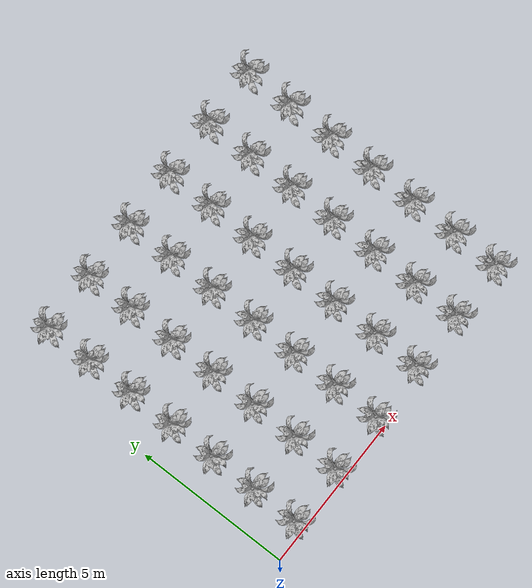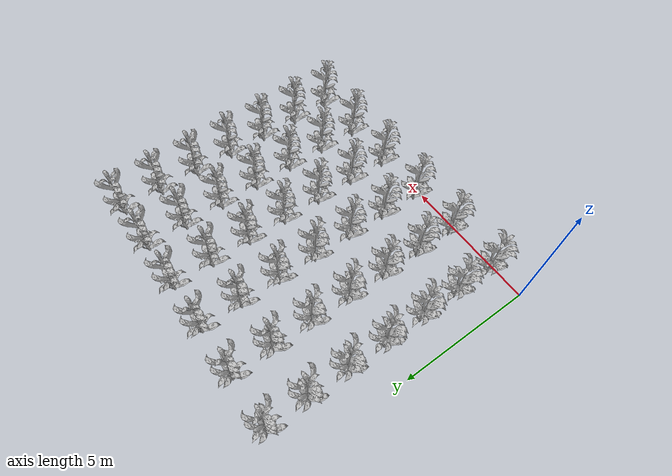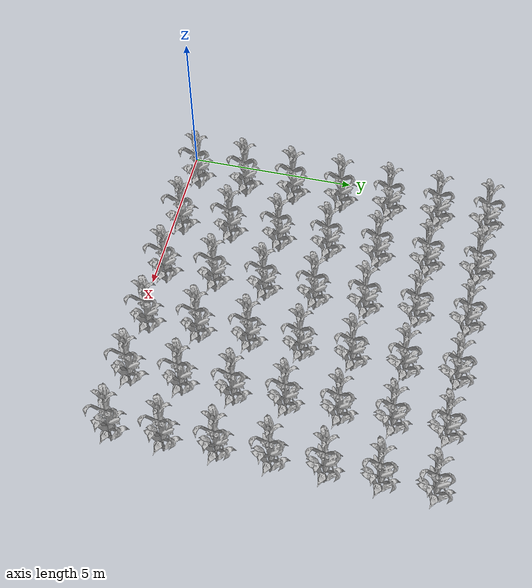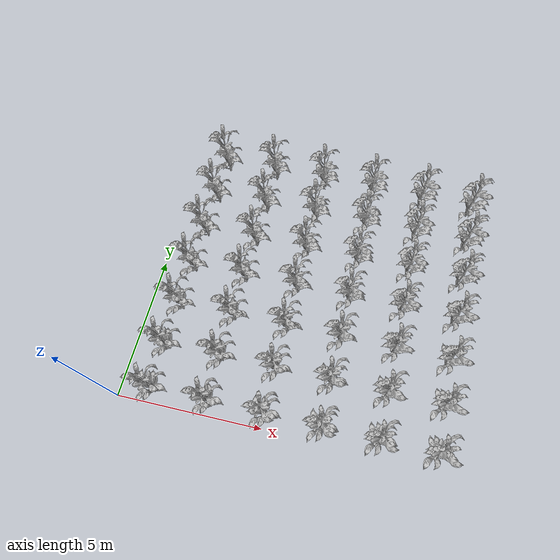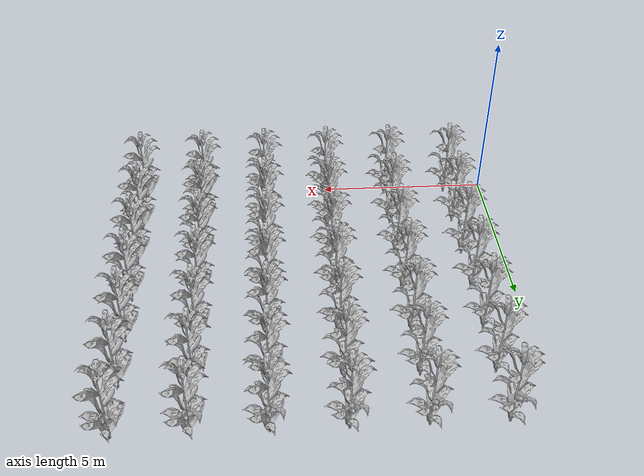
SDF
<sdf version="1.7">
 <world name="default">
  <model name="corn_1.2148646860063206_0.5">
   <static>1</static>
   <link name="link">
    <inertial>
     <mass>0.2</mass>
     <inertia>
      <ixx>0.166667</ixx>
      <ixy>0</ixy>
      <ixz>0</ixz>
      <iyy>0.166667</iyy>
      <iyz>0</iyz>
      <izz>0.166667</izz>
     </inertia>
    </inertial>
    <collision name="collision">
     <geometry><mesh><uri>model://corn_2/meshes/corn.dae</uri><scale>1 1 1</scale></mesh></geometry>
     <surface>
      <friction><ode><mu>0.0</mu><mu2>0.0</mu2></ode></friction>
      <contact><ode><kp>0.0</kp><kd>0.0</kd><max_vel>0.0</max_vel><min_depth>0.002</min_depth></ode></contact>
     </surface>
    </collision>
    <visual name="visual">
     <geometry><mesh><uri>model://corn_2/meshes/corn.dae</uri><scale>1 1 1</scale></mesh></geometry>
    </visual>
    <velocity_decay><linear>0</linear><angular>0</angular></velocity_decay>
   </link>
   <pose>1.21487 0.5 0.15 0 -0 0</pose>
  </model>
  <model name="corn_1.2148646860063206_2.0">
   <static>1</static>
   <link name="link">
    <inertial>
     <mass>0.2</mass>
     <inertia>
      <ixx>0.166667</ixx>
      <ixy>0</ixy>
      <ixz>0</ixz>
      <iyy>0.166667</iyy>
      <iyz>0</iyz>
      <izz>0.166667</izz>
     </inertia>
    </inertial>
    <collision name="collision">
     <geometry><mesh><uri>model://corn_2/meshes/corn.dae</uri><scale>1 1 1</scale></mesh></geometry>
     <surface>
      <friction><ode><mu>0.0</mu><mu2>0.0</mu2></ode></friction>
      <contact><ode><kp>0.0</kp><kd>0.0</kd><max_vel>0.0</max_vel><min_depth>0.002</min_depth></ode></contact>
     </surface>
    </collision>
    <visual name="visual">
     <geometry><mesh><uri>model://corn_2/meshes/corn.dae</uri><scale>1 1 1</scale></mesh></geometry>
    </visual>
    <velocity_decay><linear>0</linear><angular>0</angular></velocity_decay>
   </link>
   <pose>1.21487 2 0.15 0 -0 0</pose>
  </model>
  <model name="corn_1.2148646860063206_3.5">
   <static>1</static>
   <link name="link">
    <inertial>
     <mass>0.2</mass>
     <inertia>
      <ixx>0.166667</ixx>
      <ixy>0</ixy>
      <ixz>0</ixz>
      <iyy>0.166667</iyy>
      <iyz>0</iyz>
      <izz>0.166667</izz>
     </inertia>
    </inertial>
    <collision name="collision">
     <geometry><mesh><uri>model://corn_2/meshes/corn.dae</uri><scale>1 1 1</scale></mesh></geometry>
     <surface>
      <friction><ode><mu>0.0</mu><mu2>0.0</mu2></ode></friction>
      <contact><ode><kp>0.0</kp><kd>0.0</kd><max_vel>0.0</max_vel><min_depth>0.002</min_depth></ode></contact>
     </surface>
    </collision>
    <visual name="visual">
     <geometry><mesh><uri>model://corn_2/meshes/corn.dae</uri><scale>1 1 1</scale></mesh></geometry>
    </visual>
    <velocity_decay><linear>0</linear><angular>0</angular></velocity_decay>
   </link>
   <pose>1.21487 3.5 0.15 0 -0 0</pose>
  </model>
  <model name="corn_1.2148646860063206_5.0">
   <static>1</static>
   <link name="link">
    <inertial>
     <mass>0.2</mass>
     <inertia>
      <ixx>0.166667</ixx>
      <ixy>0</ixy>
      <ixz>0</ixz>
      <iyy>0.166667</iyy>
      <iyz>0</iyz>
      <izz>0.166667</izz>
     </inertia>
    </inertial>
    <collision name="collision">
     <geometry><mesh><uri>model://corn_2/meshes/corn.dae</uri><scale>1 1 1</scale></mesh></geometry>
     <surface>
      <friction><ode><mu>0.0</mu><mu2>0.0</mu2></ode></friction>
      <contact><ode><kp>0.0</kp><kd>0.0</kd><max_vel>0.0</max_vel><min_depth>0.002</min_depth></ode></contact>
     </surface>
    </collision>
    <visual name="visual">
     <geometry><mesh><uri>model://corn_2/meshes/corn.dae</uri><scale>1 1 1</scale></mesh></geometry>
    </visual>
    <velocity_decay><linear>0</linear><angular>0</angular></velocity_decay>
   </link>
   <pose>1.21487 5 0.15 0 -0 0</pose>
  </model>
  <model name="corn_1.2148646860063206_6.5">
   <static>1</static>
   <link name="link">
    <inertial>
     <mass>0.2</mass>
     <inertia>
      <ixx>0.166667</ixx>
      <ixy>0</ixy>
      <ixz>0</ixz>
      <iyy>0.166667</iyy>
      <iyz>0</iyz>
      <izz>0.166667</izz>
     </inertia>
    </inertial>
    <collision name="collision">
     <geometry><mesh><uri>model://corn_2/meshes/corn.dae</uri><scale>1 1 1</scale></mesh></geometry>
     <surface>
      <friction><ode><mu>0.0</mu><mu2>0.0</mu2></ode></friction>
      <contact><ode><kp>0.0</kp><kd>0.0</kd><max_vel>0.0</max_vel><min_depth>0.002</min_depth></ode></contact>
     </surface>
    </collision>
    <visual name="visual">
     <geometry><mesh><uri>model://corn_2/meshes/corn.dae</uri><scale>1 1 1</scale></mesh></geometry>
    </visual>
    <velocity_decay><linear>0</linear><angular>0</angular></velocity_decay>
   </link>
   <pose>1.21487 6.5 0.15 0 -0 0</pose>
  </model>
  <model name="corn_1.2148646860063206_8.0">
   <static>1</static>
   <link name="link">
    <inertial>
     <mass>0.2</mass>
     <inertia>
      <ixx>0.166667</ixx>
      <ixy>0</ixy>
      <ixz>0</ixz>
      <iyy>0.166667</iyy>
      <iyz>0</iyz>
      <izz>0.166667</izz>
     </inertia>
    </inertial>
    <collision name="collision">
     <geometry><mesh><uri>model://corn_2/meshes/corn.dae</uri><scale>1 1 1</scale></mesh></geometry>
     <surface>
      <friction><ode><mu>0.0</mu><mu2>0.0</mu2></ode></friction>
      <contact><ode><kp>0.0</kp><kd>0.0</kd><max_vel>0.0</max_vel><min_depth>0.002</min_depth></ode></contact>
     </surface>
    </collision>
    <visual name="visual">
     <geometry><mesh><uri>model://corn_2/meshes/corn.dae</uri><scale>1 1 1</scale></mesh></geometry>
    </visual>
    <velocity_decay><linear>0</linear><angular>0</angular></velocity_decay>
   </link>
   <pose>1.21487 8 0.15 0 -0 0</pose>
  </model>
  <model name="corn_1.2148646860063206_9.5">
   <static>1</static>
   <link name="link">
    <inertial>
     <mass>0.2</mass>
     <inertia>
      <ixx>0.166667</ixx>
      <ixy>0</ixy>
      <ixz>0</ixz>
      <iyy>0.166667</iyy>
      <iyz>0</iyz>
      <izz>0.166667</izz>
     </inertia>
    </inertial>
    <collision name="collision">
     <geometry><mesh><uri>model://corn_2/meshes/corn.dae</uri><scale>1 1 1</scale></mesh></geometry>
     <surface>
      <friction><ode><mu>0.0</mu><mu2>0.0</mu2></ode></friction>
      <contact><ode><kp>0.0</kp><kd>0.0</kd><max_vel>0.0</max_vel><min_depth>0.002</min_depth></ode></contact>
     </surface>
    </collision>
    <visual name="visual">
     <geometry><mesh><uri>model://corn_2/meshes/corn.dae</uri><scale>1 1 1</scale></mesh></geometry>
    </visual>
    <velocity_decay><linear>0</linear><angular>0</angular></velocity_decay>
   </link>
   <pose>1.21487 9.5 0.15 0 -0 0</pose>
  </model>
  <model name="corn_3.1126727651393438_0.5">
   <static>1</static>
   <link name="link">
    <inertial>
     <mass>0.2</mass>
     <inertia>
      <ixx>0.166667</ixx>
      <ixy>0</ixy>
      <ixz>0</ixz>
      <iyy>0.166667</iyy>
      <iyz>0</iyz>
      <izz>0.166667</izz>
     </inertia>
    </inertial>
    <collision name="collision">
     <geometry><mesh><uri>model://corn_2/meshes/corn.dae</uri><scale>1 1 1</scale></mesh></geometry>
     <surface>
      <friction><ode><mu>0.0</mu><mu2>0.0</mu2></ode></friction>
      <contact><ode><kp>0.0</kp><kd>0.0</kd><max_vel>0.0</max_vel><min_depth>0.002</min_depth></ode></contact>
     </surface>
    </collision>
    <visual name="visual">
     <geometry><mesh><uri>model://corn_2/meshes/corn.dae</uri><scale>1 1 1</scale></mesh></geometry>
    </visual>
    <velocity_decay><linear>0</linear><angular>0</angular></velocity_decay>
   </link>
   <pose>3.11267 0.5 0.15 0 -0 0</pose>
  </model>
  <model name="corn_3.1126727651393438_2.0">
   <static>1</static>
   <link name="link">
    <inertial>
     <mass>0.2</mass>
     <inertia>
      <ixx>0.166667</ixx>
      <ixy>0</ixy>
      <ixz>0</ixz>
      <iyy>0.166667</iyy>
      <iyz>0</iyz>
      <izz>0.166667</izz>
     </inertia>
    </inertial>
    <collision name="collision">
     <geometry><mesh><uri>model://corn_2/meshes/corn.dae</uri><scale>1 1 1</scale></mesh></geometry>
     <surface>
      <friction><ode><mu>0.0</mu><mu2>0.0</mu2></ode></friction>
      <contact><ode><kp>0.0</kp><kd>0.0</kd><max_vel>0.0</max_vel><min_depth>0.002</min_depth></ode></contact>
     </surface>
    </collision>
    <visual name="visual">
     <geometry><mesh><uri>model://corn_2/meshes/corn.dae</uri><scale>1 1 1</scale></mesh></geometry>
    </visual>
    <velocity_decay><linear>0</linear><angular>0</angular></velocity_decay>
   </link>
   <pose>3.11267 2 0.15 0 -0 0</pose>
  </model>
  <model name="corn_3.1126727651393438_3.5">
   <static>1</static>
   <link name="link">
    <inertial>
     <mass>0.2</mass>
     <inertia>
      <ixx>0.166667</ixx>
      <ixy>0</ixy>
      <ixz>0</ixz>
      <iyy>0.166667</iyy>
      <iyz>0</iyz>
      <izz>0.166667</izz>
     </inertia>
    </inertial>
    <collision name="collision">
     <geometry><mesh><uri>model://corn_2/meshes/corn.dae</uri><scale>1 1 1</scale></mesh></geometry>
     <surface>
      <friction><ode><mu>0.0</mu><mu2>0.0</mu2></ode></friction>
      <contact><ode><kp>0.0</kp><kd>0.0</kd><max_vel>0.0</max_vel><min_depth>0.002</min_depth></ode></contact>
     </surface>
    </collision>
    <visual name="visual">
     <geometry><mesh><uri>model://corn_2/meshes/corn.dae</uri><scale>1 1 1</scale></mesh></geometry>
    </visual>
    <velocity_decay><linear>0</linear><angular>0</angular></velocity_decay>
   </link>
   <pose>3.11267 3.5 0.15 0 -0 0</pose>
  </model>
  <model name="corn_3.1126727651393438_5.0">
   <static>1</static>
   <link name="link">
    <inertial>
     <mass>0.2</mass>
     <inertia>
      <ixx>0.166667</ixx>
      <ixy>0</ixy>
      <ixz>0</ixz>
      <iyy>0.166667</iyy>
      <iyz>0</iyz>
      <izz>0.166667</izz>
     </inertia>
    </inertial>
    <collision name="collision">
     <geometry><mesh><uri>model://corn_2/meshes/corn.dae</uri><scale>1 1 1</scale></mesh></geometry>
     <surface>
      <friction><ode><mu>0.0</mu><mu2>0.0</mu2></ode></friction>
      <contact><ode><kp>0.0</kp><kd>0.0</kd><max_vel>0.0</max_vel><min_depth>0.002</min_depth></ode></contact>
     </surface>
    </collision>
    <visual name="visual">
     <geometry><mesh><uri>model://corn_2/meshes/corn.dae</uri><scale>1 1 1</scale></mesh></geometry>
    </visual>
    <velocity_decay><linear>0</linear><angular>0</angular></velocity_decay>
   </link>
   <pose>3.11267 5 0.15 0 -0 0</pose>
  </model>
  <model name="corn_3.1126727651393438_6.5">
   <static>1</static>
   <link name="link">
    <inertial>
     <mass>0.2</mass>
     <inertia>
      <ixx>0.166667</ixx>
      <ixy>0</ixy>
      <ixz>0</ixz>
      <iyy>0.166667</iyy>
      <iyz>0</iyz>
      <izz>0.166667</izz>
     </inertia>
    </inertial>
    <collision name="collision">
     <geometry><mesh><uri>model://corn_2/meshes/corn.dae</uri><scale>1 1 1</scale></mesh></geometry>
     <surface>
      <friction><ode><mu>0.0</mu><mu2>0.0</mu2></ode></friction>
      <contact><ode><kp>0.0</kp><kd>0.0</kd><max_vel>0.0</max_vel><min_depth>0.002</min_depth></ode></contact>
     </surface>
    </collision>
    <visual name="visual">
     <geometry><mesh><uri>model://corn_2/meshes/corn.dae</uri><scale>1 1 1</scale></mesh></geometry>
    </visual>
    <velocity_decay><linear>0</linear><angular>0</angular></velocity_decay>
   </link>
   <pose>3.11267 6.5 0.15 0 -0 0</pose>
  </model>
  <model name="corn_3.1126727651393438_8.0">
   <static>1</static>
   <link name="link">
    <inertial>
     <mass>0.2</mass>
     <inertia>
      <ixx>0.166667</ixx>
      <ixy>0</ixy>
      <ixz>0</ixz>
      <iyy>0.166667</iyy>
      <iyz>0</iyz>
      <izz>0.166667</izz>
     </inertia>
    </inertial>
    <collision name="collision">
     <geometry><mesh><uri>model://corn_2/meshes/corn.dae</uri><scale>1 1 1</scale></mesh></geometry>
     <surface>
      <friction><ode><mu>0.0</mu><mu2>0.0</mu2></ode></friction>
      <contact><ode><kp>0.0</kp><kd>0.0</kd><max_vel>0.0</max_vel><min_depth>0.002</min_depth></ode></contact>
     </surface>
    </collision>
    <visual name="visual">
     <geometry><mesh><uri>model://corn_2/meshes/corn.dae</uri><scale>1 1 1</scale></mesh></geometry>
    </visual>
    <velocity_decay><linear>0</linear><angular>0</angular></velocity_decay>
   </link>
   <pose>3.11267 8 0.15 0 -0 0</pose>
  </model>
  <model name="corn_3.1126727651393438_9.5">
   <static>1</static>
   <link name="link">
    <inertial>
     <mass>0.2</mass>
     <inertia>
      <ixx>0.166667</ixx>
      <ixy>0</ixy>
      <ixz>0</ixz>
      <iyy>0.166667</iyy>
      <iyz>0</iyz>
      <izz>0.166667</izz>
     </inertia>
    </inertial>
    <collision name="collision">
     <geometry><mesh><uri>model://corn_2/meshes/corn.dae</uri><scale>1 1 1</scale></mesh></geometry>
     <surface>
      <friction><ode><mu>0.0</mu><mu2>0.0</mu2></ode></friction>
      <contact><ode><kp>0.0</kp><kd>0.0</kd><max_vel>0.0</max_vel><min_depth>0.002</min_depth></ode></contact>
     </surface>
    </collision>
    <visual name="visual">
     <geometry><mesh><uri>model://corn_2/meshes/corn.dae</uri><scale>1 1 1</scale></mesh></geometry>
    </visual>
    <velocity_decay><linear>0</linear><angular>0</angular></velocity_decay>
   </link>
   <pose>3.11267 9.5 0.15 0 -0 0</pose>
  </model>
  <model name="corn_4.995110941804327_0.5">
   <static>1</static>
   <link name="link">
    <inertial>
     <mass>0.2</mass>
     <inertia>
      <ixx>0.166667</ixx>
      <ixy>0</ixy>
      <ixz>0</ixz>
      <iyy>0.166667</iyy>
      <iyz>0</iyz>
      <izz>0.166667</izz>
     </inertia>
    </inertial>
    <collision name="collision">
     <geometry><mesh><uri>model://corn_2/meshes/corn.dae</uri><scale>1 1 1</scale></mesh></geometry>
     <surface>
      <friction><ode><mu>0.0</mu><mu2>0.0</mu2></ode></friction>
      <contact><ode><kp>0.0</kp><kd>0.0</kd><max_vel>0.0</max_vel><min_depth>0.002</min_depth></ode></contact>
     </surface>
    </collision>
    <visual name="visual">
     <geometry><mesh><uri>model://corn_2/meshes/corn.dae</uri><scale>1 1 1</scale></mesh></geometry>
    </visual>
    <velocity_decay><linear>0</linear><angular>0</angular></velocity_decay>
   </link>
   <pose>4.99511 0.5 0.15 0 -0 0</pose>
  </model>
  <model name="corn_4.995110941804327_2.0">
   <static>1</static>
   <link name="link">
    <inertial>
     <mass>0.2</mass>
     <inertia>
      <ixx>0.166667</ixx>
      <ixy>0</ixy>
      <ixz>0</ixz>
      <iyy>0.166667</iyy>
      <iyz>0</iyz>
      <izz>0.166667</izz>
     </inertia>
    </inertial>
    <collision name="collision">
     <geometry><mesh><uri>model://corn_2/meshes/corn.dae</uri><scale>1 1 1</scale></mesh></geometry>
     <surface>
      <friction><ode><mu>0.0</mu><mu2>0.0</mu2></ode></friction>
      <contact><ode><kp>0.0</kp><kd>0.0</kd><max_vel>0.0</max_vel><min_depth>0.002</min_depth></ode></contact>
     </surface>
    </collision>
    <visual name="visual">
     <geometry><mesh><uri>model://corn_2/meshes/corn.dae</uri><scale>1 1 1</scale></mesh></geometry>
    </visual>
    <velocity_decay><linear>0</linear><angular>0</angular></velocity_decay>
   </link>
   <pose>4.99511 2 0.15 0 -0 0</pose>
  </model>
  <model name="corn_4.995110941804327_3.5">
   <static>1</static>
   <link name="link">
    <inertial>
     <mass>0.2</mass>
     <inertia>
      <ixx>0.166667</ixx>
      <ixy>0</ixy>
      <ixz>0</ixz>
      <iyy>0.166667</iyy>
      <iyz>0</iyz>
      <izz>0.166667</izz>
     </inertia>
    </inertial>
    <collision name="collision">
     <geometry><mesh><uri>model://corn_2/meshes/corn.dae</uri><scale>1 1 1</scale></mesh></geometry>
     <surface>
      <friction><ode><mu>0.0</mu><mu2>0.0</mu2></ode></friction>
      <contact><ode><kp>0.0</kp><kd>0.0</kd><max_vel>0.0</max_vel><min_depth>0.002</min_depth></ode></contact>
     </surface>
    </collision>
    <visual name="visual">
     <geometry><mesh><uri>model://corn_2/meshes/corn.dae</uri><scale>1 1 1</scale></mesh></geometry>
    </visual>
    <velocity_decay><linear>0</linear><angular>0</angular></velocity_decay>
   </link>
   <pose>4.99511 3.5 0.15 0 -0 0</pose>
  </model>
  <model name="corn_4.995110941804327_5.0">
   <static>1</static>
   <link name="link">
    <inertial>
     <mass>0.2</mass>
     <inertia>
      <ixx>0.166667</ixx>
      <ixy>0</ixy>
      <ixz>0</ixz>
      <iyy>0.166667</iyy>
      <iyz>0</iyz>
      <izz>0.166667</izz>
     </inertia>
    </inertial>
    <collision name="collision">
     <geometry><mesh><uri>model://corn_2/meshes/corn.dae</uri><scale>1 1 1</scale></mesh></geometry>
     <surface>
      <friction><ode><mu>0.0</mu><mu2>0.0</mu2></ode></friction>
      <contact><ode><kp>0.0</kp><kd>0.0</kd><max_vel>0.0</max_vel><min_depth>0.002</min_depth></ode></contact>
     </surface>
    </collision>
    <visual name="visual">
     <geometry><mesh><uri>model://corn_2/meshes/corn.dae</uri><scale>1 1 1</scale></mesh></geometry>
    </visual>
    <velocity_decay><linear>0</linear><angular>0</angular></velocity_decay>
   </link>
   <pose>4.99511 5 0.15 0 -0 0</pose>
  </model>
  <model name="corn_4.995110941804327_6.5">
   <static>1</static>
   <link name="link">
    <inertial>
     <mass>0.2</mass>
     <inertia>
      <ixx>0.166667</ixx>
      <ixy>0</ixy>
      <ixz>0</ixz>
      <iyy>0.166667</iyy>
      <iyz>0</iyz>
      <izz>0.166667</izz>
     </inertia>
    </inertial>
    <collision name="collision">
     <geometry><mesh><uri>model://corn_2/meshes/corn.dae</uri><scale>1 1 1</scale></mesh></geometry>
     <surface>
      <friction><ode><mu>0.0</mu><mu2>0.0</mu2></ode></friction>
      <contact><ode><kp>0.0</kp><kd>0.0</kd><max_vel>0.0</max_vel><min_depth>0.002</min_depth></ode></contact>
     </surface>
    </collision>
    <visual name="visual">
     <geometry><mesh><uri>model://corn_2/meshes/corn.dae</uri><scale>1 1 1</scale></mesh></geometry>
    </visual>
    <velocity_decay><linear>0</linear><angular>0</angular></velocity_decay>
   </link>
   <pose>4.99511 6.5 0.15 0 -0 0</pose>
  </model>
  <model name="corn_4.995110941804327_8.0">
   <static>1</static>
   <link name="link">
    <inertial>
     <mass>0.2</mass>
     <inertia>
      <ixx>0.166667</ixx>
      <ixy>0</ixy>
      <ixz>0</ixz>
      <iyy>0.166667</iyy>
      <iyz>0</iyz>
      <izz>0.166667</izz>
     </inertia>
    </inertial>
    <collision name="collision">
     <geometry><mesh><uri>model://corn_2/meshes/corn.dae</uri><scale>1 1 1</scale></mesh></geometry>
     <surface>
      <friction><ode><mu>0.0</mu><mu2>0.0</mu2></ode></friction>
      <contact><ode><kp>0.0</kp><kd>0.0</kd><max_vel>0.0</max_vel><min_depth>0.002</min_depth></ode></contact>
     </surface>
    </collision>
    <visual name="visual">
     <geometry><mesh><uri>model://corn_2/meshes/corn.dae</uri><scale>1 1 1</scale></mesh></geometry>
    </visual>
    <velocity_decay><linear>0</linear><angular>0</angular></velocity_decay>
   </link>
   <pose>4.99511 8 0.15 0 -0 0</pose>
  </model>
  <model name="corn_4.995110941804327_9.5">
   <static>1</static>
   <link name="link">
    <inertial>
     <mass>0.2</mass>
     <inertia>
      <ixx>0.166667</ixx>
      <ixy>0</ixy>
      <ixz>0</ixz>
      <iyy>0.166667</iyy>
      <iyz>0</iyz>
      <izz>0.166667</izz>
     </inertia>
    </inertial>
    <collision name="collision">
     <geometry><mesh><uri>model://corn_2/meshes/corn.dae</uri><scale>1 1 1</scale></mesh></geometry>
     <surface>
      <friction><ode><mu>0.0</mu><mu2>0.0</mu2></ode></friction>
      <contact><ode><kp>0.0</kp><kd>0.0</kd><max_vel>0.0</max_vel><min_depth>0.002</min_depth></ode></contact>
     </surface>
    </collision>
    <visual name="visual">
     <geometry><mesh><uri>model://corn_2/meshes/corn.dae</uri><scale>1 1 1</scale></mesh></geometry>
    </visual>
    <velocity_decay><linear>0</linear><angular>0</angular></velocity_decay>
   </link>
   <pose>4.99511 9.5 0.15 0 -0 0</pose>
  </model>
  <model name="corn_6.862271810291748_0.5">
   <static>1</static>
   <link name="link">
    <inertial>
     <mass>0.2</mass>
     <inertia>
      <ixx>0.166667</ixx>
      <ixy>0</ixy>
      <ixz>0</ixz>
      <iyy>0.166667</iyy>
      <iyz>0</iyz>
      <izz>0.166667</izz>
     </inertia>
    </inertial>
    <collision name="collision">
     <geometry><mesh><uri>model://corn_2/meshes/corn.dae</uri><scale>1 1 1</scale></mesh></geometry>
     <surface>
      <friction><ode><mu>0.0</mu><mu2>0.0</mu2></ode></friction>
      <contact><ode><kp>0.0</kp><kd>0.0</kd><max_vel>0.0</max_vel><min_depth>0.002</min_depth></ode></contact>
     </surface>
    </collision>
    <visual name="visual">
     <geometry><mesh><uri>model://corn_2/meshes/corn.dae</uri><scale>1 1 1</scale></mesh></geometry>
    </visual>
    <velocity_decay><linear>0</linear><angular>0</angular></velocity_decay>
   </link>
   <pose>6.86227 0.5 0.15 0 -0 0</pose>
  </model>
  <model name="corn_6.862271810291748_2.0">
   <static>1</static>
   <link name="link">
    <inertial>
     <mass>0.2</mass>
     <inertia>
      <ixx>0.166667</ixx>
      <ixy>0</ixy>
      <ixz>0</ixz>
      <iyy>0.166667</iyy>
      <iyz>0</iyz>
      <izz>0.166667</izz>
     </inertia>
    </inertial>
    <collision name="collision">
     <geometry><mesh><uri>model://corn_2/meshes/corn.dae</uri><scale>1 1 1</scale></mesh></geometry>
     <surface>
      <friction><ode><mu>0.0</mu><mu2>0.0</mu2></ode></friction>
      <contact><ode><kp>0.0</kp><kd>0.0</kd><max_vel>0.0</max_vel><min_depth>0.002</min_depth></ode></contact>
     </surface>
    </collision>
    <visual name="visual">
     <geometry><mesh><uri>model://corn_2/meshes/corn.dae</uri><scale>1 1 1</scale></mesh></geometry>
    </visual>
    <velocity_decay><linear>0</linear><angular>0</angular></velocity_decay>
   </link>
   <pose>6.86227 2 0.15 0 -0 0</pose>
  </model>
  <model name="corn_6.862271810291748_3.5">
   <static>1</static>
   <link name="link">
    <inertial>
     <mass>0.2</mass>
     <inertia>
      <ixx>0.166667</ixx>
      <ixy>0</ixy>
      <ixz>0</ixz>
      <iyy>0.166667</iyy>
      <iyz>0</iyz>
      <izz>0.166667</izz>
     </inertia>
    </inertial>
    <collision name="collision">
     <geometry><mesh><uri>model://corn_2/meshes/corn.dae</uri><scale>1 1 1</scale></mesh></geometry>
     <surface>
      <friction><ode><mu>0.0</mu><mu2>0.0</mu2></ode></friction>
      <contact><ode><kp>0.0</kp><kd>0.0</kd><max_vel>0.0</max_vel><min_depth>0.002</min_depth></ode></contact>
     </surface>
    </collision>
    <visual name="visual">
     <geometry><mesh><uri>model://corn_2/meshes/corn.dae</uri><scale>1 1 1</scale></mesh></geometry>
    </visual>
    <velocity_decay><linear>0</linear><angular>0</angular></velocity_decay>
   </link>
   <pose>6.86227 3.5 0.15 0 -0 0</pose>
  </model>
  <model name="corn_6.862271810291748_5.0">
   <static>1</static>
   <link name="link">
    <inertial>
     <mass>0.2</mass>
     <inertia>
      <ixx>0.166667</ixx>
      <ixy>0</ixy>
      <ixz>0</ixz>
      <iyy>0.166667</iyy>
      <iyz>0</iyz>
      <izz>0.166667</izz>
     </inertia>
    </inertial>
    <collision name="collision">
     <geometry><mesh><uri>model://corn_2/meshes/corn.dae</uri><scale>1 1 1</scale></mesh></geometry>
     <surface>
      <friction><ode><mu>0.0</mu><mu2>0.0</mu2></ode></friction>
      <contact><ode><kp>0.0</kp><kd>0.0</kd><max_vel>0.0</max_vel><min_depth>0.002</min_depth></ode></contact>
     </surface>
    </collision>
    <visual name="visual">
     <geometry><mesh><uri>model://corn_2/meshes/corn.dae</uri><scale>1 1 1</scale></mesh></geometry>
    </visual>
    <velocity_decay><linear>0</linear><angular>0</angular></velocity_decay>
   </link>
   <pose>6.86227 5 0.15 0 -0 0</pose>
  </model>
  <model name="corn_6.862271810291748_6.5">
   <static>1</static>
   <link name="link">
    <inertial>
     <mass>0.2</mass>
     <inertia>
      <ixx>0.166667</ixx>
      <ixy>0</ixy>
      <ixz>0</ixz>
      <iyy>0.166667</iyy>
      <iyz>0</iyz>
      <izz>0.166667</izz>
     </inertia>
    </inertial>
    <collision name="collision">
     <geometry><mesh><uri>model://corn_2/meshes/corn.dae</uri><scale>1 1 1</scale></mesh></geometry>
     <surface>
      <friction><ode><mu>0.0</mu><mu2>0.0</mu2></ode></friction>
      <contact><ode><kp>0.0</kp><kd>0.0</kd><max_vel>0.0</max_vel><min_depth>0.002</min_depth></ode></contact>
     </surface>
    </collision>
    <visual name="visual">
     <geometry><mesh><uri>model://corn_2/meshes/corn.dae</uri><scale>1 1 1</scale></mesh></geometry>
    </visual>
    <velocity_decay><linear>0</linear><angular>0</angular></velocity_decay>
   </link>
   <pose>6.86227 6.5 0.15 0 -0 0</pose>
  </model>
  <model name="corn_6.862271810291748_8.0">
   <static>1</static>
   <link name="link">
    <inertial>
     <mass>0.2</mass>
     <inertia>
      <ixx>0.166667</ixx>
      <ixy>0</ixy>
      <ixz>0</ixz>
      <iyy>0.166667</iyy>
      <iyz>0</iyz>
      <izz>0.166667</izz>
     </inertia>
    </inertial>
    <collision name="collision">
     <geometry><mesh><uri>model://corn_2/meshes/corn.dae</uri><scale>1 1 1</scale></mesh></geometry>
     <surface>
      <friction><ode><mu>0.0</mu><mu2>0.0</mu2></ode></friction>
      <contact><ode><kp>0.0</kp><kd>0.0</kd><max_vel>0.0</max_vel><min_depth>0.002</min_depth></ode></contact>
     </surface>
    </collision>
    <visual name="visual">
     <geometry><mesh><uri>model://corn_2/meshes/corn.dae</uri><scale>1 1 1</scale></mesh></geometry>
    </visual>
    <velocity_decay><linear>0</linear><angular>0</angular></velocity_decay>
   </link>
   <pose>6.86227 8 0.15 0 -0 0</pose>
  </model>
  <model name="corn_6.862271810291748_9.5">
   <static>1</static>
   <link name="link">
    <inertial>
     <mass>0.2</mass>
     <inertia>
      <ixx>0.166667</ixx>
      <ixy>0</ixy>
      <ixz>0</ixz>
      <iyy>0.166667</iyy>
      <iyz>0</iyz>
      <izz>0.166667</izz>
     </inertia>
    </inertial>
    <collision name="collision">
     <geometry><mesh><uri>model://corn_2/meshes/corn.dae</uri><scale>1 1 1</scale></mesh></geometry>
     <surface>
      <friction><ode><mu>0.0</mu><mu2>0.0</mu2></ode></friction>
      <contact><ode><kp>0.0</kp><kd>0.0</kd><max_vel>0.0</max_vel><min_depth>0.002</min_depth></ode></contact>
     </surface>
    </collision>
    <visual name="visual">
     <geometry><mesh><uri>model://corn_2/meshes/corn.dae</uri><scale>1 1 1</scale></mesh></geometry>
    </visual>
    <velocity_decay><linear>0</linear><angular>0</angular></velocity_decay>
   </link>
   <pose>6.86227 9.5 0.15 0 -0 0</pose>
  </model>
  <model name="corn_8.714247470056204_0.5">
   <static>1</static>
   <link name="link">
    <inertial>
     <mass>0.2</mass>
     <inertia>
      <ixx>0.166667</ixx>
      <ixy>0</ixy>
      <ixz>0</ixz>
      <iyy>0.166667</iyy>
      <iyz>0</iyz>
      <izz>0.166667</izz>
     </inertia>
    </inertial>
    <collision name="collision">
     <geometry><mesh><uri>model://corn_2/meshes/corn.dae</uri><scale>1 1 1</scale></mesh></geometry>
     <surface>
      <friction><ode><mu>0.0</mu><mu2>0.0</mu2></ode></friction>
      <contact><ode><kp>0.0</kp><kd>0.0</kd><max_vel>0.0</max_vel><min_depth>0.002</min_depth></ode></contact>
     </surface>
    </collision>
    <visual name="visual">
     <geometry><mesh><uri>model://corn_2/meshes/corn.dae</uri><scale>1 1 1</scale></mesh></geometry>
    </visual>
    <velocity_decay><linear>0</linear><angular>0</angular></velocity_decay>
   </link>
   <pose>8.71425 0.5 0.15 0 -0 0</pose>
  </model>
  <model name="corn_8.714247470056204_2.0">
   <static>1</static>
   <link name="link">
    <inertial>
     <mass>0.2</mass>
     <inertia>
      <ixx>0.166667</ixx>
      <ixy>0</ixy>
      <ixz>0</ixz>
      <iyy>0.166667</iyy>
      <iyz>0</iyz>
      <izz>0.166667</izz>
     </inertia>
    </inertial>
    <collision name="collision">
     <geometry><mesh><uri>model://corn_2/meshes/corn.dae</uri><scale>1 1 1</scale></mesh></geometry>
     <surface>
      <friction><ode><mu>0.0</mu><mu2>0.0</mu2></ode></friction>
      <contact><ode><kp>0.0</kp><kd>0.0</kd><max_vel>0.0</max_vel><min_depth>0.002</min_depth></ode></contact>
     </surface>
    </collision>
    <visual name="visual">
     <geometry><mesh><uri>model://corn_2/meshes/corn.dae</uri><scale>1 1 1</scale></mesh></geometry>
    </visual>
    <velocity_decay><linear>0</linear><angular>0</angular></velocity_decay>
   </link>
   <pose>8.71425 2 0.15 0 -0 0</pose>
  </model>
  <model name="corn_8.714247470056204_3.5">
   <static>1</static>
   <link name="link">
    <inertial>
     <mass>0.2</mass>
     <inertia>
      <ixx>0.166667</ixx>
      <ixy>0</ixy>
      <ixz>0</ixz>
      <iyy>0.166667</iyy>
      <iyz>0</iyz>
      <izz>0.166667</izz>
     </inertia>
    </inertial>
    <collision name="collision">
     <geometry><mesh><uri>model://corn_2/meshes/corn.dae</uri><scale>1 1 1</scale></mesh></geometry>
     <surface>
      <friction><ode><mu>0.0</mu><mu2>0.0</mu2></ode></friction>
      <contact><ode><kp>0.0</kp><kd>0.0</kd><max_vel>0.0</max_vel><min_depth>0.002</min_depth></ode></contact>
     </surface>
    </collision>
    <visual name="visual">
     <geometry><mesh><uri>model://corn_2/meshes/corn.dae</uri><scale>1 1 1</scale></mesh></geometry>
    </visual>
    <velocity_decay><linear>0</linear><angular>0</angular></velocity_decay>
   </link>
   <pose>8.71425 3.5 0.15 0 -0 0</pose>
  </model>
  <model name="corn_8.714247470056204_5.0">
   <static>1</static>
   <link name="link">
    <inertial>
     <mass>0.2</mass>
     <inertia>
      <ixx>0.166667</ixx>
      <ixy>0</ixy>
      <ixz>0</ixz>
      <iyy>0.166667</iyy>
      <iyz>0</iyz>
      <izz>0.166667</izz>
     </inertia>
    </inertial>
    <collision name="collision">
     <geometry><mesh><uri>model://corn_2/meshes/corn.dae</uri><scale>1 1 1</scale></mesh></geometry>
     <surface>
      <friction><ode><mu>0.0</mu><mu2>0.0</mu2></ode></friction>
      <contact><ode><kp>0.0</kp><kd>0.0</kd><max_vel>0.0</max_vel><min_depth>0.002</min_depth></ode></contact>
     </surface>
    </collision>
    <visual name="visual">
     <geometry><mesh><uri>model://corn_2/meshes/corn.dae</uri><scale>1 1 1</scale></mesh></geometry>
    </visual>
    <velocity_decay><linear>0</linear><angular>0</angular></velocity_decay>
   </link>
   <pose>8.71425 5 0.15 0 -0 0</pose>
  </model>
  <model name="corn_8.714247470056204_6.5">
   <static>1</static>
   <link name="link">
    <inertial>
     <mass>0.2</mass>
     <inertia>
      <ixx>0.166667</ixx>
      <ixy>0</ixy>
      <ixz>0</ixz>
      <iyy>0.166667</iyy>
      <iyz>0</iyz>
      <izz>0.166667</izz>
     </inertia>
    </inertial>
    <collision name="collision">
     <geometry><mesh><uri>model://corn_2/meshes/corn.dae</uri><scale>1 1 1</scale></mesh></geometry>
     <surface>
      <friction><ode><mu>0.0</mu><mu2>0.0</mu2></ode></friction>
      <contact><ode><kp>0.0</kp><kd>0.0</kd><max_vel>0.0</max_vel><min_depth>0.002</min_depth></ode></contact>
     </surface>
    </collision>
    <visual name="visual">
     <geometry><mesh><uri>model://corn_2/meshes/corn.dae</uri><scale>1 1 1</scale></mesh></geometry>
    </visual>
    <velocity_decay><linear>0</linear><angular>0</angular></velocity_decay>
   </link>
   <pose>8.71425 6.5 0.15 0 -0 0</pose>
  </model>
  <model name="corn_8.714247470056204_8.0">
   <static>1</static>
   <link name="link">
    <inertial>
     <mass>0.2</mass>
     <inertia>
      <ixx>0.166667</ixx>
      <ixy>0</ixy>
      <ixz>0</ixz>
      <iyy>0.166667</iyy>
      <iyz>0</iyz>
      <izz>0.166667</izz>
     </inertia>
    </inertial>
    <collision name="collision">
     <geometry><mesh><uri>model://corn_2/meshes/corn.dae</uri><scale>1 1 1</scale></mesh></geometry>
     <surface>
      <friction><ode><mu>0.0</mu><mu2>0.0</mu2></ode></friction>
      <contact><ode><kp>0.0</kp><kd>0.0</kd><max_vel>0.0</max_vel><min_depth>0.002</min_depth></ode></contact>
     </surface>
    </collision>
    <visual name="visual">
     <geometry><mesh><uri>model://corn_2/meshes/corn.dae</uri><scale>1 1 1</scale></mesh></geometry>
    </visual>
    <velocity_decay><linear>0</linear><angular>0</angular></velocity_decay>
   </link>
   <pose>8.71425 8 0.15 0 -0 0</pose>
  </model>
  <model name="corn_8.714247470056204_9.5">
   <static>1</static>
   <link name="link">
    <inertial>
     <mass>0.2</mass>
     <inertia>
      <ixx>0.166667</ixx>
      <ixy>0</ixy>
      <ixz>0</ixz>
      <iyy>0.166667</iyy>
      <iyz>0</iyz>
      <izz>0.166667</izz>
     </inertia>
    </inertial>
    <collision name="collision">
     <geometry><mesh><uri>model://corn_2/meshes/corn.dae</uri><scale>1 1 1</scale></mesh></geometry>
     <surface>
      <friction><ode><mu>0.0</mu><mu2>0.0</mu2></ode></friction>
      <contact><ode><kp>0.0</kp><kd>0.0</kd><max_vel>0.0</max_vel><min_depth>0.002</min_depth></ode></contact>
     </surface>
    </collision>
    <visual name="visual">
     <geometry><mesh><uri>model://corn_2/meshes/corn.dae</uri><scale>1 1 1</scale></mesh></geometry>
    </visual>
    <velocity_decay><linear>0</linear><angular>0</angular></velocity_decay>
   </link>
   <pose>8.71425 9.5 0.15 0 -0 0</pose>
  </model>
  <model name="corn_10.551129528193574_0.5">
   <static>1</static>
   <link name="link">
    <inertial>
     <mass>0.2</mass>
     <inertia>
      <ixx>0.166667</ixx>
      <ixy>0</ixy>
      <ixz>0</ixz>
      <iyy>0.166667</iyy>
      <iyz>0</iyz>
      <izz>0.166667</izz>
     </inertia>
    </inertial>
    <collision name="collision">
     <geometry><mesh><uri>model://corn_2/meshes/corn.dae</uri><scale>1 1 1</scale></mesh></geometry>
     <surface>
      <friction><ode><mu>0.0</mu><mu2>0.0</mu2></ode></friction>
      <contact><ode><kp>0.0</kp><kd>0.0</kd><max_vel>0.0</max_vel><min_depth>0.002</min_depth></ode></contact>
     </surface>
    </collision>
    <visual name="visual">
     <geometry><mesh><uri>model://corn_2/meshes/corn.dae</uri><scale>1 1 1</scale></mesh></geometry>
    </visual>
    <velocity_decay><linear>0</linear><angular>0</angular></velocity_decay>
   </link>
   <pose>10.5511 0.5 0.15 0 -0 0</pose>
  </model>
  <model name="corn_10.551129528193574_2.0">
   <static>1</static>
   <link name="link">
    <inertial>
     <mass>0.2</mass>
     <inertia>
      <ixx>0.166667</ixx>
      <ixy>0</ixy>
      <ixz>0</ixz>
      <iyy>0.166667</iyy>
      <iyz>0</iyz>
      <izz>0.166667</izz>
     </inertia>
    </inertial>
    <collision name="collision">
     <geometry><mesh><uri>model://corn_2/meshes/corn.dae</uri><scale>1 1 1</scale></mesh></geometry>
     <surface>
      <friction><ode><mu>0.0</mu><mu2>0.0</mu2></ode></friction>
      <contact><ode><kp>0.0</kp><kd>0.0</kd><max_vel>0.0</max_vel><min_depth>0.002</min_depth></ode></contact>
     </surface>
    </collision>
    <visual name="visual">
     <geometry><mesh><uri>model://corn_2/meshes/corn.dae</uri><scale>1 1 1</scale></mesh></geometry>
    </visual>
    <velocity_decay><linear>0</linear><angular>0</angular></velocity_decay>
   </link>
   <pose>10.5511 2 0.15 0 -0 0</pose>
  </model>
  <model name="corn_10.551129528193574_3.5">
   <static>1</static>
   <link name="link">
    <inertial>
     <mass>0.2</mass>
     <inertia>
      <ixx>0.166667</ixx>
      <ixy>0</ixy>
      <ixz>0</ixz>
      <iyy>0.166667</iyy>
      <iyz>0</iyz>
      <izz>0.166667</izz>
     </inertia>
    </inertial>
    <collision name="collision">
     <geometry><mesh><uri>model://corn_2/meshes/corn.dae</uri><scale>1 1 1</scale></mesh></geometry>
     <surface>
      <friction><ode><mu>0.0</mu><mu2>0.0</mu2></ode></friction>
      <contact><ode><kp>0.0</kp><kd>0.0</kd><max_vel>0.0</max_vel><min_depth>0.002</min_depth></ode></contact>
     </surface>
    </collision>
    <visual name="visual">
     <geometry><mesh><uri>model://corn_2/meshes/corn.dae</uri><scale>1 1 1</scale></mesh></geometry>
    </visual>
    <velocity_decay><linear>0</linear><angular>0</angular></velocity_decay>
   </link>
   <pose>10.5511 3.5 0.15 0 -0 0</pose>
  </model>
  <model name="corn_10.551129528193574_5.0">
   <static>1</static>
   <link name="link">
    <inertial>
     <mass>0.2</mass>
     <inertia>
      <ixx>0.166667</ixx>
      <ixy>0</ixy>
      <ixz>0</ixz>
      <iyy>0.166667</iyy>
      <iyz>0</iyz>
      <izz>0.166667</izz>
     </inertia>
    </inertial>
    <collision name="collision">
     <geometry><mesh><uri>model://corn_2/meshes/corn.dae</uri><scale>1 1 1</scale></mesh></geometry>
     <surface>
      <friction><ode><mu>0.0</mu><mu2>0.0</mu2></ode></friction>
      <contact><ode><kp>0.0</kp><kd>0.0</kd><max_vel>0.0</max_vel><min_depth>0.002</min_depth></ode></contact>
     </surface>
    </collision>
    <visual name="visual">
     <geometry><mesh><uri>model://corn_2/meshes/corn.dae</uri><scale>1 1 1</scale></mesh></geometry>
    </visual>
    <velocity_decay><linear>0</linear><angular>0</angular></velocity_decay>
   </link>
   <pose>10.5511 5 0.15 0 -0 0</pose>
  </model>
  <model name="corn_10.551129528193574_6.5">
   <static>1</static>
   <link name="link">
    <inertial>
     <mass>0.2</mass>
     <inertia>
      <ixx>0.166667</ixx>
      <ixy>0</ixy>
      <ixz>0</ixz>
      <iyy>0.166667</iyy>
      <iyz>0</iyz>
      <izz>0.166667</izz>
     </inertia>
    </inertial>
    <collision name="collision">
     <geometry><mesh><uri>model://corn_2/meshes/corn.dae</uri><scale>1 1 1</scale></mesh></geometry>
     <surface>
      <friction><ode><mu>0.0</mu><mu2>0.0</mu2></ode></friction>
      <contact><ode><kp>0.0</kp><kd>0.0</kd><max_vel>0.0</max_vel><min_depth>0.002</min_depth></ode></contact>
     </surface>
    </collision>
    <visual name="visual">
     <geometry><mesh><uri>model://corn_2/meshes/corn.dae</uri><scale>1 1 1</scale></mesh></geometry>
    </visual>
    <velocity_decay><linear>0</linear><angular>0</angular></velocity_decay>
   </link>
   <pose>10.5511 6.5 0.15 0 -0 0</pose>
  </model>
  <model name="corn_10.551129528193574_8.0">
   <static>1</static>
   <link name="link">
    <inertial>
     <mass>0.2</mass>
     <inertia>
      <ixx>0.166667</ixx>
      <ixy>0</ixy>
      <ixz>0</ixz>
      <iyy>0.166667</iyy>
      <iyz>0</iyz>
      <izz>0.166667</izz>
     </inertia>
    </inertial>
    <collision name="collision">
     <geometry><mesh><uri>model://corn_2/meshes/corn.dae</uri><scale>1 1 1</scale></mesh></geometry>
     <surface>
      <friction><ode><mu>0.0</mu><mu2>0.0</mu2></ode></friction>
      <contact><ode><kp>0.0</kp><kd>0.0</kd><max_vel>0.0</max_vel><min_depth>0.002</min_depth></ode></contact>
     </surface>
    </collision>
    <visual name="visual">
     <geometry><mesh><uri>model://corn_2/meshes/corn.dae</uri><scale>1 1 1</scale></mesh></geometry>
    </visual>
    <velocity_decay><linear>0</linear><angular>0</angular></velocity_decay>
   </link>
   <pose>10.5511 8 0.15 0 -0 0</pose>
  </model>
  <model name="corn_10.551129528193574_9.5">
   <static>1</static>
   <link name="link">
    <inertial>
     <mass>0.2</mass>
     <inertia>
      <ixx>0.166667</ixx>
      <ixy>0</ixy>
      <ixz>0</ixz>
      <iyy>0.166667</iyy>
      <iyz>0</iyz>
      <izz>0.166667</izz>
     </inertia>
    </inertial>
    <collision name="collision">
     <geometry><mesh><uri>model://corn_2/meshes/corn.dae</uri><scale>1 1 1</scale></mesh></geometry>
     <surface>
      <friction><ode><mu>0.0</mu><mu2>0.0</mu2></ode></friction>
      <contact><ode><kp>0.0</kp><kd>0.0</kd><max_vel>0.0</max_vel><min_depth>0.002</min_depth></ode></contact>
     </surface>
    </collision>
    <visual name="visual">
     <geometry><mesh><uri>model://corn_2/meshes/corn.dae</uri><scale>1 1 1</scale></mesh></geometry>
    </visual>
    <velocity_decay><linear>0</linear><angular>0</angular></velocity_decay>
   </link>
   <pose>10.5511 9.5 0.15 0 -0 0</pose>
  </model>
 </world>
</sdf>
